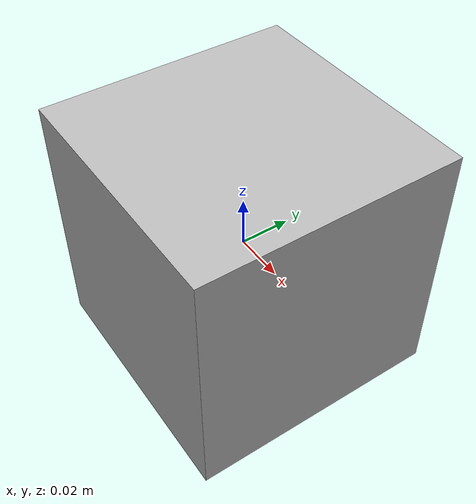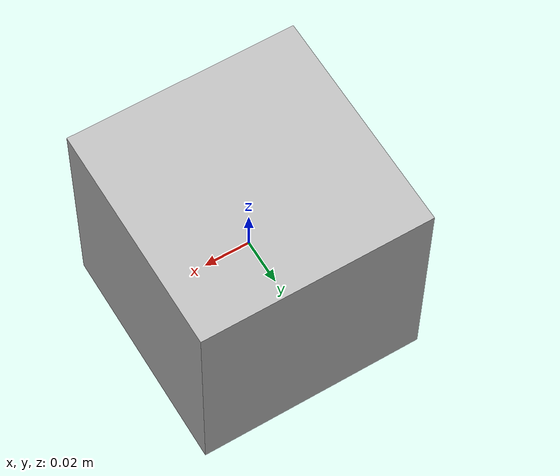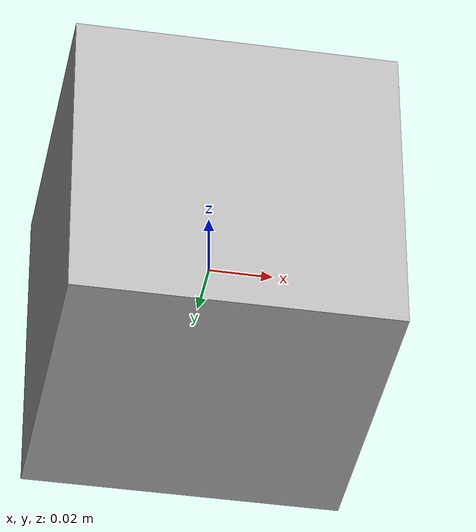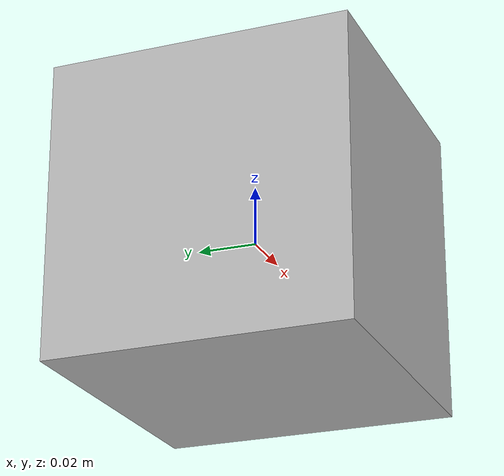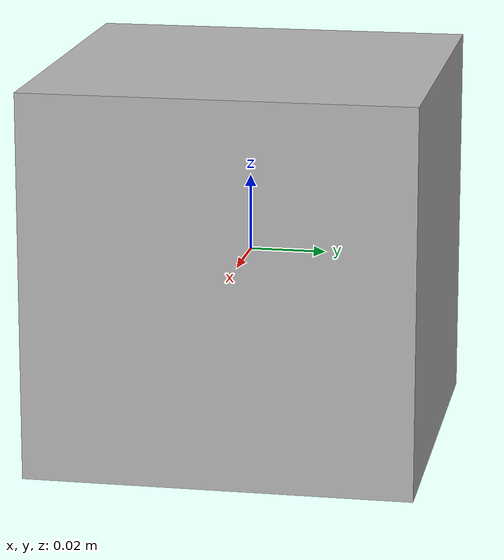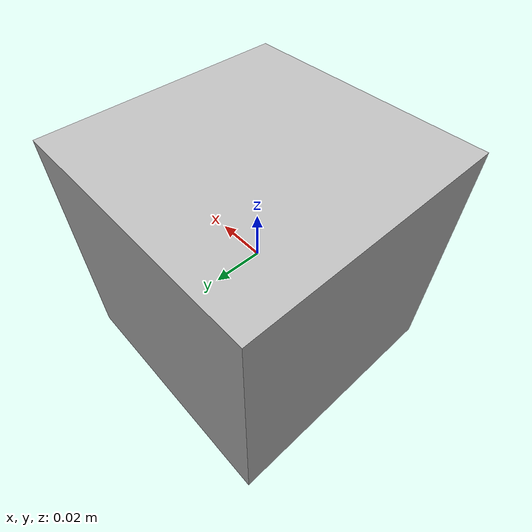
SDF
<?xml version='1.0'?>
<sdf version='1.6'>
		<model name="jointtest">
			<self_collide>true</self_collide>
			<pose>0.0 0.0 0.0 0.0 0.0 0.0</pose>
			<!-- Start of parts of the pmodel jointtest -->
				<!-- Start of declarations for part "jointtest::p1" -->
					<!-- Start of parts of part "jointtest::p1" -->
					<!-- End of parts of part "jointtest::p1" -->

					<!-- Start of links of part "jointtest::p1" -->
					<!-- link full name is jointtest::p1::L1 -->
					<link name="1-L1">
							<pose>0.0 0.0 0.0 0.0 0.0 0.0</pose>
							<inertial>
								<pose>0.0 0.0 0.0 0.0 0.0 0.0</pose>
								<inertia>
									<ixx>1.0</ixx>
									<ixy>0.0</ixy>
									<ixz>0.0</ixz>
									<iyy>1.0</iyy>
									<iyz>0.0</iyz>
									<izz>1.0</izz>
								</inertia>
								<mass>1.0</mass>
							</inertial>
							<!-- body full name is jointtest::p1::L1::B -->
							<collision name="1--B">
								<laser_retro>0.0</laser_retro>
								<pose>0.0 0.0 0.0 0.0 0.0 0.0</pose>
								<geometry>
									<box>
										<size>0.10000000149011612 0.10000000149011612 0.10000000149011612</size>
									</box>
								</geometry>
								<surface>
									<bounce>
										<restitution_coefficient>0.0</restitution_coefficient>
										<threshold>100000.0</threshold>
									</bounce>
									<friction>
										<ode>
											<mu>1.0</mu>
											<mu2>1.0</mu2>
											<fdir1>0.0 0.0 0.0</fdir1>
											<slip1>0.0</slip1>
											<slip2>0.0</slip2>
										</ode>
										<torsional>
											<coefficient>1.0</coefficient>
											<surface_radius>0.0</surface_radius>
										</torsional>
									</friction>
								</surface>
							</collision>
							<visual name="1--B">
								<laser_retro>0.0</laser_retro>
								<pose>0.0 0.0 0.0 0.0 0.0 0.0</pose>
								<geometry>
									<box>
										<size>0.10000000149011612 0.10000000149011612 0.10000000149011612</size>
									</box>
								</geometry>
								<surface>
									<bounce>
										<restitution_coefficient>0.0</restitution_coefficient>
										<threshold>100000.0</threshold>
									</bounce>
									<friction>
										<ode>
											<mu>1.0</mu>
											<mu2>1.0</mu2>
											<fdir1>0.0 0.0 0.0</fdir1>
											<slip1>0.0</slip1>
											<slip2>0.0</slip2>
										</ode>
										<torsional>
											<coefficient>1.0</coefficient>
											<surface_radius>0.0</surface_radius>
										</torsional>
									</friction>
								</surface>
							</visual>
					</link>
					<!-- End of links of part "jointtest::p1" -->

					<!-- Start of joints of part "jointtest::p1" -->
					<!-- Full name of joint: jointtest::p1::L1::R from jointtest::p1::L1 to jointtest::p2::L2-->
					<joint name="3-R" type="revolute">
						<pose>0.0 0.0 0.0 0.0 -0.0 0.0</pose>
						<parent>1-L1</parent>
						<child>2-L2</child>
						<!-- WARNING: The SDF generator relies on annotations of the joint 3-R to specify in SDF aspects of the joint that are
							 accounted for in the equations. -->
						<axis>
							<xyz>0 0 1</xyz>
						</axis>
					</joint>
					<!-- Full name of joint: jointtest::p1::L1::R3 from jointtest::p1::L1 to jointtest::p2::L3-->
					<joint name="5-R3" type="revolute">
						<pose>-1.0 0.0 -0.10000000149011612 0.0 -0.0 0.0</pose>
						<parent>1-L1</parent>
						<child>4-L3</child>
						<!-- WARNING: The SDF generator relies on annotations of the joint 5-R3 to specify in SDF aspects of the joint that are
							 accounted for in the equations. -->
						<axis>
							<xyz>0 0 1</xyz>
						</axis>
					</joint>
					<!-- End of joints of part "jointtest::p1" -->

					<!-- Start of fixed connections of part "jointtest::p1" -->

					<!-- End of fixed connections of part "jointtest::p1" -->
				<!-- End of declarations for part "jointtest::p1" -->
				<!-- Start of declarations for part "jointtest::p2" -->
					<!-- Start of parts of part "jointtest::p2" -->
					<!-- End of parts of part "jointtest::p2" -->

					<!-- Start of links of part "jointtest::p2" -->
					<!-- link full name is jointtest::p2::L2 -->
					<link name="2-L2">
							<pose>0.0 0.0 0.0 0.0 0.0 0.0</pose>
							<inertial>
								<pose>0.0 0.0 0.0 0.0 0.0 0.0</pose>
								<inertia>
									<ixx>1.0</ixx>
									<ixy>0.0</ixy>
									<ixz>0.0</ixz>
									<iyy>1.0</iyy>
									<iyz>0.0</iyz>
									<izz>1.0</izz>
								</inertia>
								<mass>1.0</mass>
							</inertial>
							<!-- body full name is jointtest::p2::L2::B -->
							<collision name="2--B">
								<laser_retro>0.0</laser_retro>
								<pose>0.0 0.0 0.0 0.0 0.0 0.0</pose>
								<geometry>
									<box>
										<size>0.10000000149011612 0.10000000149011612 0.10000000149011612</size>
									</box>
								</geometry>
								<surface>
									<bounce>
										<restitution_coefficient>0.0</restitution_coefficient>
										<threshold>100000.0</threshold>
									</bounce>
									<friction>
										<ode>
											<mu>1.0</mu>
											<mu2>1.0</mu2>
											<fdir1>0.0 0.0 0.0</fdir1>
											<slip1>0.0</slip1>
											<slip2>0.0</slip2>
										</ode>
										<torsional>
											<coefficient>1.0</coefficient>
											<surface_radius>0.0</surface_radius>
										</torsional>
									</friction>
								</surface>
							</collision>
							<visual name="2--B">
								<laser_retro>0.0</laser_retro>
								<pose>0.0 0.0 0.0 0.0 0.0 0.0</pose>
								<geometry>
									<box>
										<size>0.10000000149011612 0.10000000149011612 0.10000000149011612</size>
									</box>
								</geometry>
								<surface>
									<bounce>
										<restitution_coefficient>0.0</restitution_coefficient>
										<threshold>100000.0</threshold>
									</bounce>
									<friction>
										<ode>
											<mu>1.0</mu>
											<mu2>1.0</mu2>
											<fdir1>0.0 0.0 0.0</fdir1>
											<slip1>0.0</slip1>
											<slip2>0.0</slip2>
										</ode>
										<torsional>
											<coefficient>1.0</coefficient>
											<surface_radius>0.0</surface_radius>
										</torsional>
									</friction>
								</surface>
							</visual>
					</link>
					<!-- link full name is jointtest::p2::L3 -->
					<link name="4-L3">
							<pose>1.0 0.0 0.10000000149011612 0.0 0.0 0.0</pose>
							<inertial>
								<pose>0.0 0.0 0.0 0.0 0.0 0.0</pose>
								<inertia>
									<ixx>1.0</ixx>
									<ixy>0.0</ixy>
									<ixz>0.0</ixz>
									<iyy>1.0</iyy>
									<iyz>0.0</iyz>
									<izz>1.0</izz>
								</inertia>
								<mass>1.0</mass>
							</inertial>
					</link>
					<!-- End of links of part "jointtest::p2" -->

					<!-- Start of joints of part "jointtest::p2" -->
					<!-- Full name of joint: jointtest::p2::L3::R4 from jointtest::p2::L3 to jointtest::L4-->
					<joint name="7-R4" type="revolute">
						<pose>1.0 0.0 0.10000000149011612 0.0 -0.0 0.0</pose>
						<parent>4-L3</parent>
						<child>6-L4</child>
						<!-- WARNING: The SDF generator relies on annotations of the joint 7-R4 to specify in SDF aspects of the joint that are
							 accounted for in the equations. -->
						<axis>
							<xyz>0 0 1</xyz>
						</axis>
					</joint>
					<!-- End of joints of part "jointtest::p2" -->

					<!-- Start of fixed connections of part "jointtest::p2" -->

					<!-- End of fixed connections of part "jointtest::p2" -->
				<!-- End of declarations for part "jointtest::p2" -->
			<!-- End of parts of the pmodel jointtest -->

			<!-- Start of links of the pmodel jointtest -->
			<!-- link full name is jointtest::L4 -->
			<link name="6-L4">
					<pose>0.0 0.0 0.0 0.0 0.0 0.0</pose>
					<inertial>
						<pose>0.0 0.0 0.0 0.0 0.0 0.0</pose>
						<inertia>
							<ixx>1.0</ixx>
							<ixy>0.0</ixy>
							<ixz>0.0</ixz>
							<iyy>1.0</iyy>
							<iyz>0.0</iyz>
							<izz>1.0</izz>
						</inertia>
						<mass>1.0</mass>
					</inertial>
					<!-- body full name is jointtest::L4::B -->
					<collision name="3--B">
						<laser_retro>0.0</laser_retro>
						<pose>0.0 0.0 0.0 0.0 0.0 0.0</pose>
						<geometry>
							<box>
								<size>0.10000000149011612 0.10000000149011612 0.10000000149011612</size>
							</box>
						</geometry>
						<surface>
							<bounce>
								<restitution_coefficient>0.0</restitution_coefficient>
								<threshold>100000.0</threshold>
							</bounce>
							<friction>
								<ode>
									<mu>1.0</mu>
									<mu2>1.0</mu2>
									<fdir1>0.0 0.0 0.0</fdir1>
									<slip1>0.0</slip1>
									<slip2>0.0</slip2>
								</ode>
								<torsional>
									<coefficient>1.0</coefficient>
									<surface_radius>0.0</surface_radius>
								</torsional>
							</friction>
						</surface>
					</collision>
					<visual name="3--B">
						<laser_retro>0.0</laser_retro>
						<pose>0.0 0.0 0.0 0.0 0.0 0.0</pose>
						<geometry>
							<box>
								<size>0.10000000149011612 0.10000000149011612 0.10000000149011612</size>
							</box>
						</geometry>
						<surface>
							<bounce>
								<restitution_coefficient>0.0</restitution_coefficient>
								<threshold>100000.0</threshold>
							</bounce>
							<friction>
								<ode>
									<mu>1.0</mu>
									<mu2>1.0</mu2>
									<fdir1>0.0 0.0 0.0</fdir1>
									<slip1>0.0</slip1>
									<slip2>0.0</slip2>
								</ode>
								<torsional>
									<coefficient>1.0</coefficient>
									<surface_radius>0.0</surface_radius>
								</torsional>
							</friction>
						</surface>
					</visual>
			</link>
			<!-- End of links of the pmodel jointtest -->

			<!-- Start of joints of the pmodel jointtest -->
			<!-- End of joints of the pmodel jointtest -->

			<!-- Start of fixed connections of the pmodel jointtest -->
			<!-- End of fixed connections of the pmodel jointtest -->
		</model>
</sdf>
